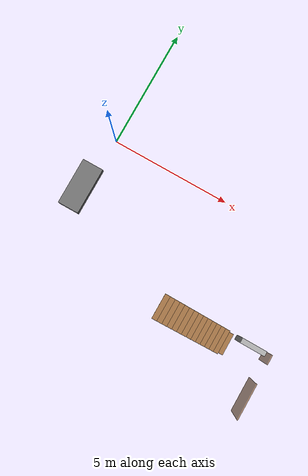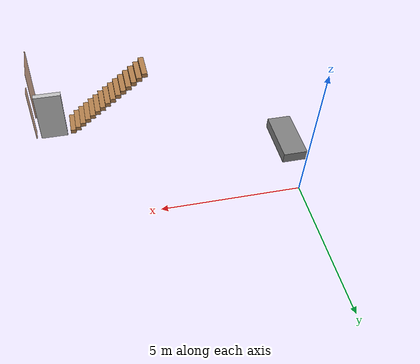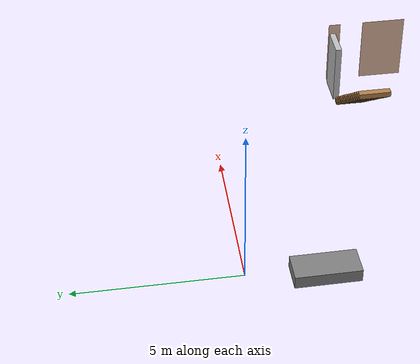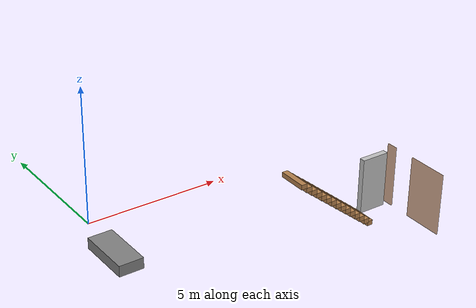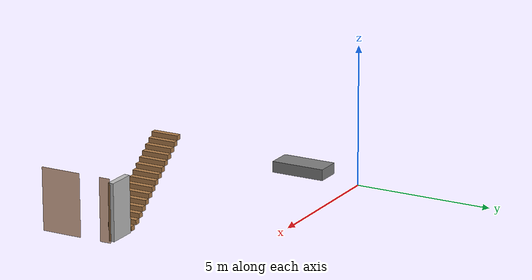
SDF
<sdf version="1.6">
 <world name="husarion_office">
  <physics name="1ms" type="ignored">
   <max_step_size>0.001</max_step_size>
   <real_time_factor>1.0</real_time_factor>
  </physics>
  <plugin filename="ignition-gazebo-contact-system" name="gz::sim::systems::Contact"/>
  <plugin filename="ignition-gazebo-imu-system" name="gz::sim::systems::Imu"/>
  <plugin filename="ignition-gazebo-physics-system" name="gz::sim::systems::Physics"/>
  <plugin filename="ignition-gazebo-scene-broadcaster-system" name="gz::sim::systems::SceneBroadcaster"/>
  <plugin filename="ignition-gazebo-sensors-system" name="gz::sim::systems::Sensors"/>
  <plugin filename="ignition-gazebo-user-commands-system" name="gz::sim::systems::UserCommands"/>
  <spherical_coordinates>
   <surface_model>EARTH_WGS84</surface_model>
   <world_frame_orientation>ENU</world_frame_orientation>
   <latitude_deg>50.088280</latitude_deg>
   <longitude_deg>19.938931</longitude_deg>
   <elevation>0</elevation>
   <heading_deg>0</heading_deg>
  </spherical_coordinates>
  <scene>
   <ambient>0.8 0.8 0.8 1</ambient>
   <background>0 0 0 1</background>
   <grid>0</grid>
   <shadows>1</shadows>
  </scene>
  <light name="sun" type="directional">
   <pose>0 0 10 0 -0 0</pose>
   <diffuse>0.8 0.8 0.8 1</diffuse>
   <specular>0.2 0.2 0.2 1</specular>
   <attenuation>
    <range>1000</range>
    <constant>0.9</constant>
    <linear>0.01</linear>
    <quadratic>0.001</quadratic>
   </attenuation>
   <direction>-0.5 0.1 -0.9</direction>
   <spot><inner_angle>0</inner_angle><outer_angle>0</outer_angle><falloff>0</falloff></spot>
  </light>
  <model name="Stairs">
   <pose>3.36692 -2.10944 0 0 -0 0</pose>
   <link name="Stairs_1">
    <visual name="Stairs_1_Visual_0">
     <pose>4.29715 -2.69448 0.083333 0 -0 -1.5708</pose>
     <geometry><box><size>0.9 0.205349 0.166667</size></box></geometry>
     <material>
      <script><uri>file://media/materials/scripts/gazebo.material</uri><name>Gazebo/Wood</name></script>
      <ambient>1 1 1 1</ambient>
     </material>
     <meta><layer>0</layer></meta>
    </visual>
    <collision name="Stairs_1_Collision_0">
     <geometry><box><size>1 0.205349 0.166667</size></box></geometry>
     <pose>4.29715 -2.69448 0.083333 0 -0 -1.5708</pose>
    </collision>
    <visual name="Stairs_1_Visual_1">
     <pose>4.0918 -2.69448 0.25 0 -0 -1.5708</pose>
     <geometry><box><size>1 0.205349 0.166667</size></box></geometry>
     <material>
      <script><uri>file://media/materials/scripts/gazebo.material</uri><name>Gazebo/Wood</name></script>
      <ambient>1 1 1 1</ambient>
     </material>
     <meta><layer>0</layer></meta>
    </visual>
    <collision name="Stairs_1_Collision_1">
     <geometry><box><size>1 0.205349 0.166667</size></box></geometry>
     <pose>4.0918 -2.69448 0.25 0 -0 -1.5708</pose>
    </collision>
    <visual name="Stairs_1_Visual_2">
     <pose>3.88645 -2.69448 0.416667 0 -0 -1.5708</pose>
     <geometry><box><size>1 0.205349 0.166667</size></box></geometry>
     <material>
      <script><uri>file://media/materials/scripts/gazebo.material</uri><name>Gazebo/Wood</name></script>
      <ambient>1 1 1 1</ambient>
     </material>
     <meta><layer>0</layer></meta>
    </visual>
    <collision name="Stairs_1_Collision_2">
     <geometry><box><size>1 0.205349 0.166667</size></box></geometry>
     <pose>3.88645 -2.69448 0.416667 0 -0 -1.5708</pose>
    </collision>
    <visual name="Stairs_1_Visual_3">
     <pose>3.6811 -2.69448 0.583333 0 -0 -1.5708</pose>
     <geometry><box><size>1 0.205349 0.166667</size></box></geometry>
     <material>
      <script><uri>file://media/materials/scripts/gazebo.material</uri><name>Gazebo/Wood</name></script>
      <ambient>1 1 1 1</ambient>
     </material>
     <meta><layer>0</layer></meta>
    </visual>
    <collision name="Stairs_1_Collision_3">
     <geometry><box><size>1 0.205349 0.166667</size></box></geometry>
     <pose>3.6811 -2.69448 0.583333 0 -0 -1.5708</pose>
    </collision>
    <visual name="Stairs_1_Visual_4">
     <pose>3.47575 -2.69448 0.75 0 -0 -1.5708</pose>
     <geometry><box><size>1 0.205349 0.166667</size></box></geometry>
     <material>
      <script><uri>file://media/materials/scripts/gazebo.material</uri><name>Gazebo/Wood</name></script>
      <ambient>1 1 1 1</ambient>
     </material>
     <meta><layer>0</layer></meta>
    </visual>
    <collision name="Stairs_1_Collision_4">
     <geometry><box><size>1 0.205349 0.166667</size></box></geometry>
     <pose>3.47575 -2.69448 0.75 0 -0 -1.5708</pose>
    </collision>
    <visual name="Stairs_1_Visual_5">
     <pose>3.2704 -2.69448 0.916667 0 -0 -1.5708</pose>
     <geometry><box><size>1 0.205349 0.166667</size></box></geometry>
     <material>
      <script><uri>file://media/materials/scripts/gazebo.material</uri><name>Gazebo/Wood</name></script>
      <ambient>1 1 1 1</ambient>
     </material>
     <meta><layer>0</layer></meta>
    </visual>
    <collision name="Stairs_1_Collision_5">
     <geometry><box><size>1 0.205349 0.166667</size></box></geometry>
     <pose>3.2704 -2.69448 0.916667 0 -0 -1.5708</pose>
    </collision>
    <visual name="Stairs_1_Visual_6">
     <pose>3.06505 -2.69448 1.08333 0 -0 -1.5708</pose>
     <geometry><box><size>1 0.205349 0.166667</size></box></geometry>
     <material>
      <script><uri>file://media/materials/scripts/gazebo.material</uri><name>Gazebo/Wood</name></script>
      <ambient>1 1 1 1</ambient>
     </material>
     <meta><layer>0</layer></meta>
    </visual>
    <collision name="Stairs_1_Collision_6">
     <geometry><box><size>1 0.205349 0.166667</size></box></geometry>
     <pose>3.06505 -2.69448 1.08333 0 -0 -1.5708</pose>
    </collision>
    <visual name="Stairs_1_Visual_7">
     <pose>2.8597 -2.69448 1.25 0 -0 -1.5708</pose>
     <geometry><box><size>1 0.205349 0.166667</size></box></geometry>
     <material>
      <script><uri>file://media/materials/scripts/gazebo.material</uri><name>Gazebo/Wood</name></script>
      <ambient>1 1 1 1</ambient>
     </material>
     <meta><layer>0</layer></meta>
    </visual>
    <collision name="Stairs_1_Collision_7">
     <geometry><box><size>1 0.205349 0.166667</size></box></geometry>
     <pose>2.8597 -2.69448 1.25 0 -0 -1.5708</pose>
    </collision>
    <visual name="Stairs_1_Visual_8">
     <pose>2.65435 -2.69448 1.41667 0 -0 -1.5708</pose>
     <geometry><box><size>1 0.205349 0.166667</size></box></geometry>
     <material>
      <script><uri>file://media/materials/scripts/gazebo.material</uri><name>Gazebo/Wood</name></script>
      <ambient>1 1 1 1</ambient>
     </material>
     <meta><layer>0</layer></meta>
    </visual>
    <collision name="Stairs_1_Collision_8">
     <geometry><box><size>1 0.205349 0.166667</size></box></geometry>
     <pose>2.65435 -2.69448 1.41667 0 -0 -1.5708</pose>
    </collision>
    <visual name="Stairs_1_Visual_9">
     <pose>2.449 -2.69448 1.58333 0 -0 -1.5708</pose>
     <geometry><box><size>1 0.205349 0.166667</size></box></geometry>
     <material>
      <script><uri>file://media/materials/scripts/gazebo.material</uri><name>Gazebo/Wood</name></script>
      <ambient>1 1 1 1</ambient>
     </material>
     <meta><layer>0</layer></meta>
    </visual>
    <collision name="Stairs_1_Collision_9">
     <geometry><box><size>1 0.205349 0.166667</size></box></geometry>
     <pose>2.449 -2.69448 1.58333 0 -0 -1.5708</pose>
    </collision>
    <visual name="Stairs_1_Visual_10">
     <pose>2.24365 -2.69448 1.75 0 -0 -1.5708</pose>
     <geometry><box><size>1 0.205349 0.166667</size></box></geometry>
     <material>
      <script><uri>file://media/materials/scripts/gazebo.material</uri><name>Gazebo/Wood</name></script>
      <ambient>1 1 1 1</ambient>
     </material>
     <meta><layer>0</layer></meta>
    </visual>
    <collision name="Stairs_1_Collision_10">
     <geometry><box><size>1 0.205349 0.166667</size></box></geometry>
     <pose>2.24365 -2.69448 1.75 0 -0 -1.5708</pose>
    </collision>
    <visual name="Stairs_1_Visual_11">
     <pose>2.0383 -2.69448 1.91667 0 -0 -1.5708</pose>
     <geometry><box><size>1 0.205349 0.166667</size></box></geometry>
     <material>
      <script><uri>file://media/materials/scripts/gazebo.material</uri><name>Gazebo/Wood</name></script>
      <ambient>1 1 1 1</ambient>
     </material>
     <meta><layer>0</layer></meta>
    </visual>
    <collision name="Stairs_1_Collision_11">
     <geometry><box><size>1 0.205349 0.166667</size></box></geometry>
     <pose>2.0383 -2.69448 1.91667 0 -0 -1.5708</pose>
    </collision>
    <visual name="Stairs_1_Visual_12">
     <pose>1.83295 -2.69448 2.08333 0 -0 -1.5708</pose>
     <geometry><box><size>1 0.205349 0.166667</size></box></geometry>
     <material>
      <script><uri>file://media/materials/scripts/gazebo.material</uri><name>Gazebo/Wood</name></script>
      <ambient>1 1 1 1</ambient>
     </material>
     <meta><layer>0</layer></meta>
    </visual>
    <collision name="Stairs_1_Collision_12">
     <geometry><box><size>1 0.205349 0.166667</size></box></geometry>
     <pose>1.83295 -2.69448 2.08333 0 -0 -1.5708</pose>
    </collision>
    <visual name="Stairs_1_Visual_13">
     <pose>1.62761 -2.69448 2.25 0 -0 -1.5708</pose>
     <geometry><box><size>1 0.205349 0.166667</size></box></geometry>
     <material>
      <script><uri>file://media/materials/scripts/gazebo.material</uri><name>Gazebo/Wood</name></script>
      <ambient>1 1 1 1</ambient>
     </material>
     <meta><layer>0</layer></meta>
    </visual>
    <collision name="Stairs_1_Collision_13">
     <geometry><box><size>1 0.205349 0.166667</size></box></geometry>
     <pose>1.62761 -2.69448 2.25 0 -0 -1.5708</pose>
    </collision>
    <visual name="Stairs_1_Visual_14">
     <pose>1.42226 -2.69448 2.41667 0 -0 -1.5708</pose>
     <geometry><box><size>1 0.205349 0.166667</size></box></geometry>
     <material>
      <script><uri>file://media/materials/scripts/gazebo.material</uri><name>Gazebo/Wood</name></script>
      <ambient>1 1 1 1</ambient>
     </material>
     <meta><layer>0</layer></meta>
    </visual>
    <collision name="Stairs_1_Collision_14">
     <geometry><box><size>1 0.205349 0.166667</size></box></geometry>
     <pose>1.42226 -2.69448 2.41667 0 -0 -1.5708</pose>
    </collision>
   </link>
   <static>1</static>
  </model>
  <model name="Glass_wall_1">
   <pose>9.09134 -6.20141 0 -0 -0 -1.56984</pose>
   <link name="right">
    <pose>0 0 1.11 0 -0 0</pose>
    <visual name="right_visual">
     <geometry><box><size>1.43627 0.03 2.2</size></box></geometry>
     <material><ambient>0.5 0.25 0 0.6</ambient><diffuse>0.5 0.25 0 0.6</diffuse></material>
    </visual>
    <collision name="right_collision">
     <geometry><box><size>1.43627 0.03 2.2</size></box></geometry>
     <surface><contact><collide_bitmask>2</collide_bitmask></contact></surface>
    </collision>
    <inertial>
     <mass>50</mass>
     <inertia><ixx>20.1704</ixx><iyy>28.762</iyy><izz>8.59904</izz><ixy>0</ixy><ixz>0</ixz><iyz>0</iyz></inertia>
    </inertial>
   </link>
   <joint name="right_joint" type="revolute">
    <parent>world</parent>
    <child>right</child>
    <axis>
     <xyz>0 0 -1</xyz>
     <limit><lower>0</lower><upper>0</upper></limit>
     <dynamics><spring_reference>0</spring_reference><spring_stiffness>0</spring_stiffness></dynamics>
    </axis>
    <pose>0.723135 0 0 0 -0 0</pose>
   </joint>
  </model>
  <model name="Glass_wall_2">
   <pose>9.08943 -4.5093 0 0 -0 1.58293</pose>
   <link name="right">
    <pose>0 0 1.11 0 -0 0</pose>
    <visual name="right_visual">
     <geometry><box><size>0.389643 0.03 2.2</size></box></geometry>
     <material><ambient>0.5 0.25 0 0.6</ambient><diffuse>0.5 0.25 0 0.6</diffuse></material>
    </visual>
    <collision name="right_collision">
     <geometry><box><size>0.389643 0.03 2.2</size></box></geometry>
     <surface><contact><collide_bitmask>2</collide_bitmask></contact></surface>
    </collision>
    <inertial>
     <mass>50</mass>
     <inertia><ixx>20.1704</ixx><iyy>20.7993</iyy><izz>0.636341</izz><ixy>0</ixy><ixz>0</ixz><iyz>0</iyz></inertia>
    </inertial>
   </link>
   <joint name="right_joint" type="revolute">
    <parent>world</parent>
    <child>right</child>
    <axis>
     <xyz>0 0 -1</xyz>
     <limit><lower>0</lower><upper>0</upper></limit>
     <dynamics><spring_reference>0</spring_reference><spring_stiffness>0</spring_stiffness></dynamics>
    </axis>
    <pose>0.199822 0 0 0 -0 0</pose>
   </joint>
  </model>
  <model name="Shelf_1">
   <static>1</static>
   <pose>-0.273934 -2.28745 0.2 0 0 -1.56696</pose>
   <link name="shelf_link">
    <collision name="body_collision"><geometry><box><size>1.9638 0.8878 0.4</size></box></geometry></collision>
    <visual name="body_visual">
     <material>
      <ambient>0.4 0.4 0.4 1</ambient>
      <diffuse>0.5 0.5 0.5 1</diffuse>
      <specular>0 0 0 0</specular>
      <emissive>0 0 0 1</emissive>
     </material>
     <geometry><box><size>1.9638 0.8878 0.4</size></box></geometry>
    </visual>
   </link>
  </model>
  <gravity>0 0 -9.8</gravity>
  <magnetic_field>6e-06 2.3e-05 -4.2e-05</magnetic_field>
  <atmosphere type="adiabatic"/>
  <physics type="ode">
   <max_step_size>0.001</max_step_size>
   <real_time_factor>1</real_time_factor>
   <real_time_update_rate>1000</real_time_update_rate>
  </physics>
  <spherical_coordinates>
   <surface_model>EARTH_WGS84</surface_model>
   <latitude_deg>0</latitude_deg>
   <longitude_deg>0</longitude_deg>
   <elevation>0</elevation>
   <heading_deg>0</heading_deg>
  </spherical_coordinates>
  <model name="connecting_wall_glass_stairs">
   <static>1</static>
   <pose>8.4 -4.40 1 0 0 0</pose>
   <link name="link">
    <collision name="collision"><geometry><box><size>1.1 0.2 2</size></box></geometry></collision>
    <visual name="visual">
     <geometry><box><size>1.0 0.2 2</size></box></geometry>
     <material><ambient>0.75 0.75 0.75 1</ambient><diffuse>0.75 0.75 0.75 1</diffuse></material>
    </visual>
   </link>
  </model>
 </world>
</sdf>
